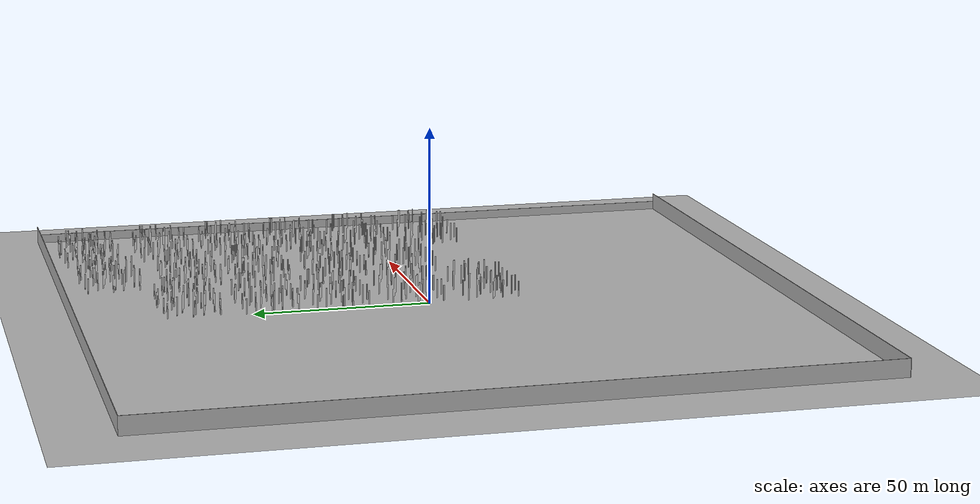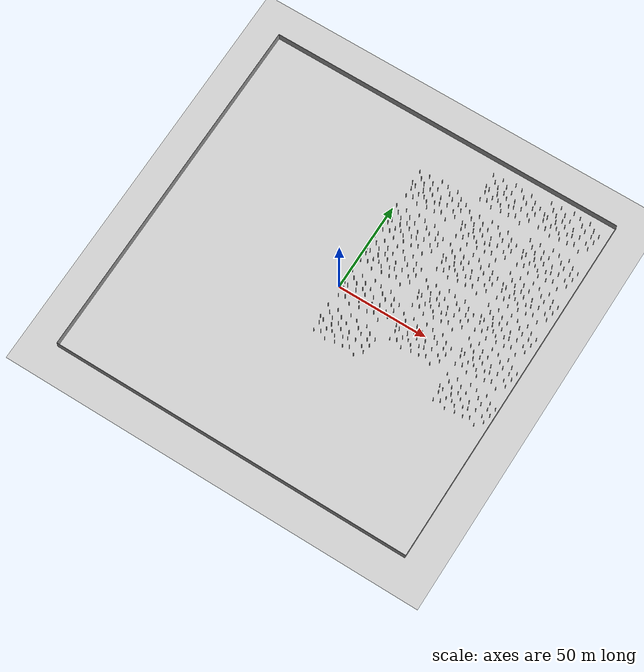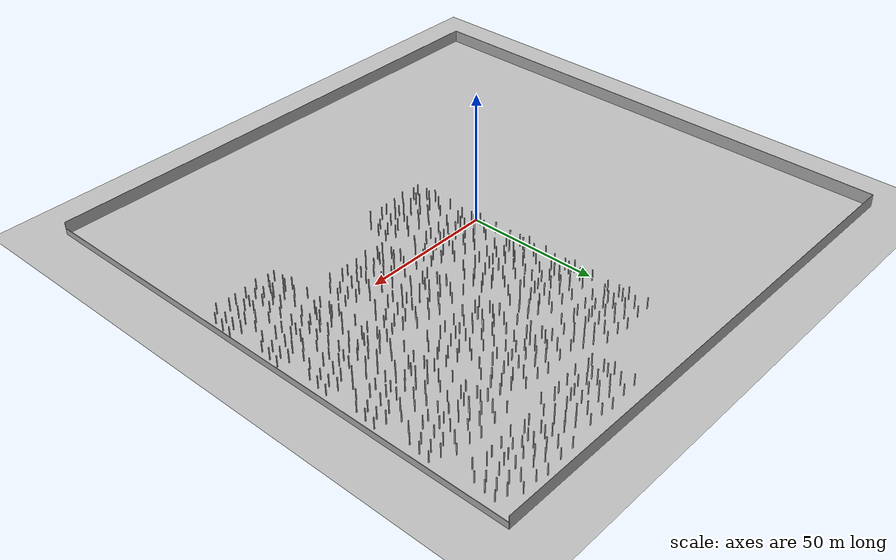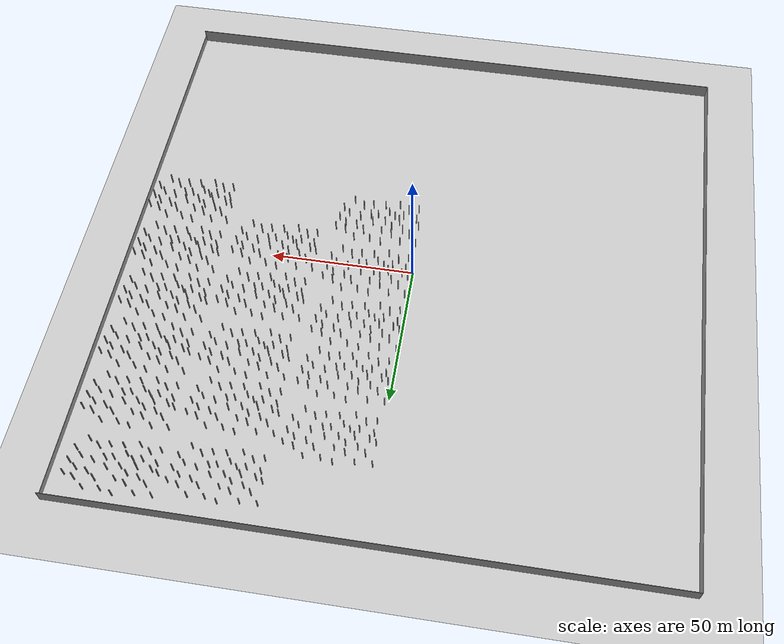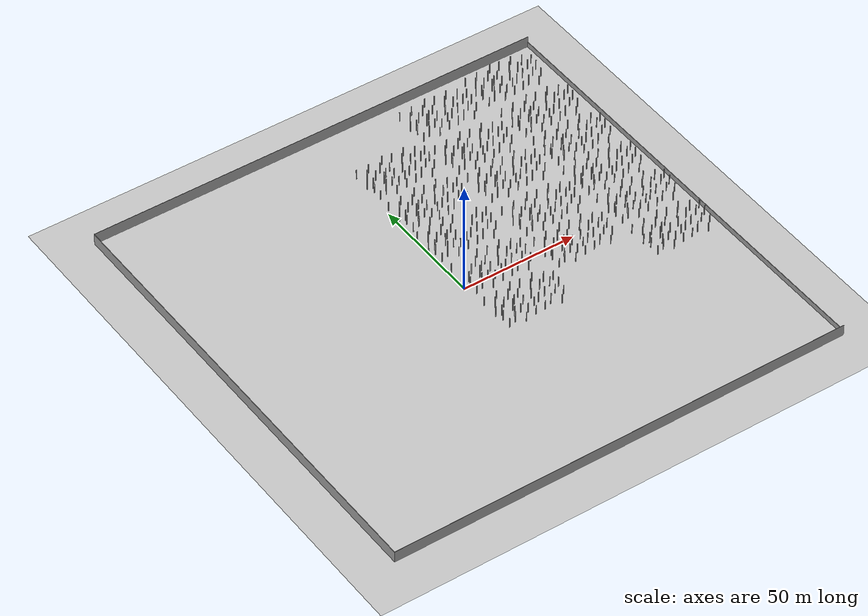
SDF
<sdf version="1.6">
 <world name="default">
  <model name="ground_plane">
   <static>1</static>
   <link name="link">
    <collision name="collision">
     <geometry><plane><normal>0 0 1</normal><size>100 100</size></plane></geometry>
     <surface><friction><ode><mu>100</mu><mu2>50</mu2></ode></friction></surface>
    </collision>
    <visual name="visual">
     <cast_shadows>0</cast_shadows>
     <geometry><plane><normal>0 0 1</normal><size>100 100</size></plane></geometry>
     <material>
      <script><uri>file://media/materials/scripts/gazebo.material</uri><name>Gazebo/Grey</name></script>
     </material>
    </visual>
   </link>
  </model>
  <model name="new_200">
   <link name="Wall_0">
    <pose>0 -100 0 0 -0 0</pose>
    <visual name="Wall_0_Visual">
     <pose>0 0 2.5 0 -0 0</pose>
     <geometry><box><size>200.15 0.15 5</size></box></geometry>
     <material>
      <script><uri>file://media/materials/scripts/gazebo.material</uri><name>Gazebo/Grey</name></script>
      <ambient>1 1 1 1</ambient>
     </material>
     <meta><layer>0</layer></meta>
    </visual>
    <collision name="Wall_0_Collision">
     <pose>0 0 2.5 0 -0 0</pose>
     <geometry><box><size>200.15 0.15 5</size></box></geometry>
     <surface>
      <friction>
       <ode><mu>1</mu><mu2>1</mu2><fdir1>0 0 0</fdir1><slip1>0</slip1><slip2>0</slip2></ode>
       <torsional>
        <coefficient>1</coefficient>
        <patch_radius>0</patch_radius>
        <surface_radius>0</surface_radius>
        <use_patch_radius>1</use_patch_radius>
        <ode><slip>0</slip></ode>
       </torsional>
      </friction>
      <bounce><restitution_coefficient>0</restitution_coefficient><threshold>1e+06</threshold></bounce>
      <contact>
       <collide_without_contact>0</collide_without_contact>
       <collide_without_contact_bitmask>1</collide_without_contact_bitmask>
       <collide_bitmask>1</collide_bitmask>
       <ode>
        <soft_cfm>0</soft_cfm>
        <soft_erp>0.2</soft_erp>
        <kp>1e+13</kp>
        <kd>1</kd>
        <max_vel>0.01</max_vel>
        <min_depth>0</min_depth>
       </ode>
       <bullet>
        <split_impulse>1</split_impulse>
        <split_impulse_penetration_threshold>-0.01</split_impulse_penetration_threshold>
        <soft_cfm>0</soft_cfm>
        <soft_erp>0.2</soft_erp>
        <kp>1e+13</kp>
        <kd>1</kd>
       </bullet>
      </contact>
     </surface>
    </collision>
   </link>
   <link name="Wall_2">
    <pose>-100 0 0 0 -0 1.5708</pose>
    <visual name="Wall_2_Visual">
     <pose>0 0 2.5 0 -0 0</pose>
     <geometry><box><size>200.15 0.15 5</size></box></geometry>
     <material>
      <script><uri>file://media/materials/scripts/gazebo.material</uri><name>Gazebo/Grey</name></script>
      <ambient>1 1 1 1</ambient>
     </material>
     <meta><layer>0</layer></meta>
    </visual>
    <collision name="Wall_2_Collision">
     <pose>0 0 2.5 0 -0 0</pose>
     <geometry><box><size>200.15 0.15 5</size></box></geometry>
     <surface>
      <friction>
       <ode><mu>1</mu><mu2>1</mu2><fdir1>0 0 0</fdir1><slip1>0</slip1><slip2>0</slip2></ode>
       <torsional>
        <coefficient>1</coefficient>
        <patch_radius>0</patch_radius>
        <surface_radius>0</surface_radius>
        <use_patch_radius>1</use_patch_radius>
        <ode><slip>0</slip></ode>
       </torsional>
      </friction>
      <bounce><restitution_coefficient>0</restitution_coefficient><threshold>1e+06</threshold></bounce>
      <contact>
       <collide_without_contact>0</collide_without_contact>
       <collide_without_contact_bitmask>1</collide_without_contact_bitmask>
       <collide_bitmask>1</collide_bitmask>
       <ode>
        <soft_cfm>0</soft_cfm>
        <soft_erp>0.2</soft_erp>
        <kp>1e+13</kp>
        <kd>1</kd>
        <max_vel>0.01</max_vel>
        <min_depth>0</min_depth>
       </ode>
       <bullet>
        <split_impulse>1</split_impulse>
        <split_impulse_penetration_threshold>-0.01</split_impulse_penetration_threshold>
        <soft_cfm>0</soft_cfm>
        <soft_erp>0.2</soft_erp>
        <kp>1e+13</kp>
        <kd>1</kd>
       </bullet>
      </contact>
     </surface>
    </collision>
   </link>
   <link name="Wall_4">
    <pose>0 100 0 0 -0 0</pose>
    <visual name="Wall_4_Visual">
     <pose>0 0 2.5 0 -0 0</pose>
     <geometry><box><size>200.15 0.15 5</size></box></geometry>
     <material>
      <script><uri>file://media/materials/scripts/gazebo.material</uri><name>Gazebo/Grey</name></script>
      <ambient>1 1 1 1</ambient>
     </material>
     <meta><layer>0</layer></meta>
    </visual>
    <collision name="Wall_4_Collision">
     <pose>0 0 2.5 0 -0 0</pose>
     <geometry><box><size>200.15 0.15 5</size></box></geometry>
     <surface>
      <friction>
       <ode><mu>1</mu><mu2>1</mu2><fdir1>0 0 0</fdir1><slip1>0</slip1><slip2>0</slip2></ode>
       <torsional>
        <coefficient>1</coefficient>
        <patch_radius>0</patch_radius>
        <surface_radius>0</surface_radius>
        <use_patch_radius>1</use_patch_radius>
        <ode><slip>0</slip></ode>
       </torsional>
      </friction>
      <bounce><restitution_coefficient>0</restitution_coefficient><threshold>1e+06</threshold></bounce>
      <contact>
       <collide_without_contact>0</collide_without_contact>
       <collide_without_contact_bitmask>1</collide_without_contact_bitmask>
       <collide_bitmask>1</collide_bitmask>
       <ode>
        <soft_cfm>0</soft_cfm>
        <soft_erp>0.2</soft_erp>
        <kp>1e+13</kp>
        <kd>1</kd>
        <max_vel>0.01</max_vel>
        <min_depth>0</min_depth>
       </ode>
       <bullet>
        <split_impulse>1</split_impulse>
        <split_impulse_penetration_threshold>-0.01</split_impulse_penetration_threshold>
        <soft_cfm>0</soft_cfm>
        <soft_erp>0.2</soft_erp>
        <kp>1e+13</kp>
        <kd>1</kd>
       </bullet>
      </contact>
     </surface>
    </collision>
   </link>
   <link name="Wall_6">
    <pose>100 0 0 0 -0 1.5708</pose>
    <visual name="Wall_6_Visual">
     <pose>0 0 1.25 0 -0 0</pose>
     <geometry><box><size>200.15 0.15 2.5</size></box></geometry>
     <material>
      <script><uri>file://media/materials/scripts/gazebo.material</uri><name>Gazebo/Grey</name></script>
      <ambient>1 1 1 1</ambient>
     </material>
     <meta><layer>0</layer></meta>
    </visual>
    <collision name="Wall_6_Collision">
     <pose>0 0 1.25 0 -0 0</pose>
     <geometry><box><size>200.15 0.15 2.5</size></box></geometry>
     <surface>
      <friction>
       <ode><mu>1</mu><mu2>1</mu2><fdir1>0 0 0</fdir1><slip1>0</slip1><slip2>0</slip2></ode>
       <torsional>
        <coefficient>1</coefficient>
        <patch_radius>0</patch_radius>
        <surface_radius>0</surface_radius>
        <use_patch_radius>1</use_patch_radius>
        <ode><slip>0</slip></ode>
       </torsional>
      </friction>
      <bounce><restitution_coefficient>0</restitution_coefficient><threshold>1e+06</threshold></bounce>
      <contact>
       <collide_without_contact>0</collide_without_contact>
       <collide_without_contact_bitmask>1</collide_without_contact_bitmask>
       <collide_bitmask>1</collide_bitmask>
       <ode>
        <soft_cfm>0</soft_cfm>
        <soft_erp>0.2</soft_erp>
        <kp>1e+13</kp>
        <kd>1</kd>
        <max_vel>0.01</max_vel>
        <min_depth>0</min_depth>
       </ode>
       <bullet>
        <split_impulse>1</split_impulse>
        <split_impulse_penetration_threshold>-0.01</split_impulse_penetration_threshold>
        <soft_cfm>0</soft_cfm>
        <soft_erp>0.2</soft_erp>
        <kp>1e+13</kp>
        <kd>1</kd>
       </bullet>
      </contact>
     </surface>
    </collision>
   </link>
   <static>1</static>
   <pose>0.131028 -0.240999 0 0 -0 0</pose>
  </model>
  <model name="pillars">
   <link name="body">
    <velocity_decay><linear>0</linear><angular>0</angular></velocity_decay>
    <visual name="visual">
     <pose>0 0 -0.001 0 -0 0</pose>
     <geometry><mesh><uri>model://pillars/pillars4.dae</uri><scale>1 1 1</scale></mesh></geometry>
    </visual>
    <collision name="pillars">
     <pose>0 0 -0.001 0 -0 0</pose>
     <geometry>
      <mesh>
       <uri>/home/huiyulin/Coding/TARE/multi_planning/Simulator/mrsl2_ws/src/mrsl_quadrotor/mrsl_models/models/pillars/pillars4.dae</uri>
       <scale>1 1 1</scale>
      </mesh>
     </geometry>
     <surface>
      <friction>
       <ode><mu>1</mu><mu2>1</mu2><fdir1>0 0 0</fdir1><slip1>0</slip1><slip2>0</slip2></ode>
       <torsional>
        <coefficient>1</coefficient>
        <patch_radius>0</patch_radius>
        <surface_radius>0</surface_radius>
        <use_patch_radius>1</use_patch_radius>
        <ode><slip>0</slip></ode>
       </torsional>
      </friction>
      <bounce><restitution_coefficient>0</restitution_coefficient><threshold>1e+06</threshold></bounce>
      <contact>
       <collide_without_contact>0</collide_without_contact>
       <collide_without_contact_bitmask>1</collide_without_contact_bitmask>
       <collide_bitmask>1</collide_bitmask>
       <ode>
        <soft_cfm>0</soft_cfm>
        <soft_erp>0.2</soft_erp>
        <kp>1e+13</kp>
        <kd>1</kd>
        <max_vel>0.01</max_vel>
        <min_depth>0</min_depth>
       </ode>
       <bullet>
        <split_impulse>1</split_impulse>
        <split_impulse_penetration_threshold>-0.01</split_impulse_penetration_threshold>
        <soft_cfm>0</soft_cfm>
        <soft_erp>0.2</soft_erp>
        <kp>1e+13</kp>
        <kd>1</kd>
       </bullet>
      </contact>
     </surface>
    </collision>
   </link>
   <static>1</static>
   <pose>63.8836 85.888 0 0 -0 0</pose>
  </model>
  <model name="pillars_clone">
   <link name="body">
    <velocity_decay><linear>0</linear><angular>0</angular></velocity_decay>
    <visual name="visual">
     <pose>0 0 -0.001 0 -0 0</pose>
     <geometry><mesh><uri>model://pillars/pillars4.dae</uri><scale>1 1 1</scale></mesh></geometry>
    </visual>
    <collision name="pillars">
     <pose>0 0 -0.001 0 -0 0</pose>
     <geometry>
      <mesh>
       <uri>/home/huiyulin/Coding/TARE/multi_planning/Simulator/mrsl2_ws/src/mrsl_quadrotor/mrsl_models/models/pillars/pillars4.dae</uri>
       <scale>1 1 1</scale>
      </mesh>
     </geometry>
     <surface>
      <friction>
       <ode><mu>1</mu><mu2>1</mu2><fdir1>0 0 0</fdir1><slip1>0</slip1><slip2>0</slip2></ode>
       <torsional>
        <coefficient>1</coefficient>
        <patch_radius>0</patch_radius>
        <surface_radius>0</surface_radius>
        <use_patch_radius>1</use_patch_radius>
        <ode><slip>0</slip></ode>
       </torsional>
      </friction>
      <bounce><restitution_coefficient>0</restitution_coefficient><threshold>1e+06</threshold></bounce>
      <contact>
       <collide_without_contact>0</collide_without_contact>
       <collide_without_contact_bitmask>1</collide_without_contact_bitmask>
       <collide_bitmask>1</collide_bitmask>
       <ode>
        <soft_cfm>0</soft_cfm>
        <soft_erp>0.2</soft_erp>
        <kp>1e+13</kp>
        <kd>1</kd>
        <max_vel>0.01</max_vel>
        <min_depth>0</min_depth>
       </ode>
       <bullet>
        <split_impulse>1</split_impulse>
        <split_impulse_penetration_threshold>-0.01</split_impulse_penetration_threshold>
        <soft_cfm>0</soft_cfm>
        <soft_erp>0.2</soft_erp>
        <kp>1e+13</kp>
        <kd>1</kd>
       </bullet>
      </contact>
     </surface>
    </collision>
   </link>
   <static>1</static>
   <pose>65.0825 63.0175 0 0 -0 0</pose>
  </model>
  <model name="pillars_clone_0">
   <link name="body">
    <velocity_decay><linear>0</linear><angular>0</angular></velocity_decay>
    <visual name="visual">
     <pose>0 0 -0.001 0 -0 0</pose>
     <geometry><mesh><uri>model://pillars/pillars4.dae</uri><scale>1 1 1</scale></mesh></geometry>
    </visual>
    <collision name="pillars">
     <pose>0 0 -0.001 0 -0 0</pose>
     <geometry>
      <mesh>
       <uri>/home/huiyulin/Coding/TARE/multi_planning/Simulator/mrsl2_ws/src/mrsl_quadrotor/mrsl_models/models/pillars/pillars4.dae</uri>
       <scale>1 1 1</scale>
      </mesh>
     </geometry>
     <surface>
      <friction>
       <ode><mu>1</mu><mu2>1</mu2><fdir1>0 0 0</fdir1><slip1>0</slip1><slip2>0</slip2></ode>
       <torsional>
        <coefficient>1</coefficient>
        <patch_radius>0</patch_radius>
        <surface_radius>0</surface_radius>
        <use_patch_radius>1</use_patch_radius>
        <ode><slip>0</slip></ode>
       </torsional>
      </friction>
      <bounce><restitution_coefficient>0</restitution_coefficient><threshold>1e+06</threshold></bounce>
      <contact>
       <collide_without_contact>0</collide_without_contact>
       <collide_without_contact_bitmask>1</collide_without_contact_bitmask>
       <collide_bitmask>1</collide_bitmask>
       <ode>
        <soft_cfm>0</soft_cfm>
        <soft_erp>0.2</soft_erp>
        <kp>1e+13</kp>
        <kd>1</kd>
        <max_vel>0.01</max_vel>
        <min_depth>0</min_depth>
       </ode>
       <bullet>
        <split_impulse>1</split_impulse>
        <split_impulse_penetration_threshold>-0.01</split_impulse_penetration_threshold>
        <soft_cfm>0</soft_cfm>
        <soft_erp>0.2</soft_erp>
        <kp>1e+13</kp>
        <kd>1</kd>
       </bullet>
      </contact>
     </surface>
    </collision>
   </link>
   <static>1</static>
   <pose>65.7574 42.5502 0 0 -0 0</pose>
  </model>
  <model name="pillars_clone_1">
   <link name="body">
    <velocity_decay><linear>0</linear><angular>0</angular></velocity_decay>
    <visual name="visual">
     <pose>0 0 -0.001 0 -0 0</pose>
     <geometry><mesh><uri>model://pillars/pillars4.dae</uri><scale>1 1 1</scale></mesh></geometry>
    </visual>
    <collision name="pillars">
     <pose>0 0 -0.001 0 -0 0</pose>
     <geometry>
      <mesh>
       <uri>/home/huiyulin/Coding/TARE/multi_planning/Simulator/mrsl2_ws/src/mrsl_quadrotor/mrsl_models/models/pillars/pillars4.dae</uri>
       <scale>1 1 1</scale>
      </mesh>
     </geometry>
     <surface>
      <friction>
       <ode><mu>1</mu><mu2>1</mu2><fdir1>0 0 0</fdir1><slip1>0</slip1><slip2>0</slip2></ode>
       <torsional>
        <coefficient>1</coefficient>
        <patch_radius>0</patch_radius>
        <surface_radius>0</surface_radius>
        <use_patch_radius>1</use_patch_radius>
        <ode><slip>0</slip></ode>
       </torsional>
      </friction>
      <bounce><restitution_coefficient>0</restitution_coefficient><threshold>1e+06</threshold></bounce>
      <contact>
       <collide_without_contact>0</collide_without_contact>
       <collide_without_contact_bitmask>1</collide_without_contact_bitmask>
       <collide_bitmask>1</collide_bitmask>
       <ode>
        <soft_cfm>0</soft_cfm>
        <soft_erp>0.2</soft_erp>
        <kp>1e+13</kp>
        <kd>1</kd>
        <max_vel>0.01</max_vel>
        <min_depth>0</min_depth>
       </ode>
       <bullet>
        <split_impulse>1</split_impulse>
        <split_impulse_penetration_threshold>-0.01</split_impulse_penetration_threshold>
        <soft_cfm>0</soft_cfm>
        <soft_erp>0.2</soft_erp>
        <kp>1e+13</kp>
        <kd>1</kd>
       </bullet>
      </contact>
     </surface>
    </collision>
   </link>
   <static>1</static>
   <pose>65.3502 22.278 0 0 -0 0</pose>
  </model>
  <model name="pillars_clone_2">
   <link name="body">
    <velocity_decay><linear>0</linear><angular>0</angular></velocity_decay>
    <visual name="visual">
     <pose>0 0 -0.001 0 -0 0</pose>
     <geometry><mesh><uri>model://pillars/pillars4.dae</uri><scale>1 1 1</scale></mesh></geometry>
    </visual>
    <collision name="pillars">
     <pose>0 0 -0.001 0 -0 0</pose>
     <geometry>
      <mesh>
       <uri>/home/huiyulin/Coding/TARE/multi_planning/Simulator/mrsl2_ws/src/mrsl_quadrotor/mrsl_models/models/pillars/pillars4.dae</uri>
       <scale>1 1 1</scale>
      </mesh>
     </geometry>
     <surface>
      <friction>
       <ode><mu>1</mu><mu2>1</mu2><fdir1>0 0 0</fdir1><slip1>0</slip1><slip2>0</slip2></ode>
       <torsional>
        <coefficient>1</coefficient>
        <patch_radius>0</patch_radius>
        <surface_radius>0</surface_radius>
        <use_patch_radius>1</use_patch_radius>
        <ode><slip>0</slip></ode>
       </torsional>
      </friction>
      <bounce><restitution_coefficient>0</restitution_coefficient><threshold>1e+06</threshold></bounce>
      <contact>
       <collide_without_contact>0</collide_without_contact>
       <collide_without_contact_bitmask>1</collide_without_contact_bitmask>
       <collide_bitmask>1</collide_bitmask>
       <ode>
        <soft_cfm>0</soft_cfm>
        <soft_erp>0.2</soft_erp>
        <kp>1e+13</kp>
        <kd>1</kd>
        <max_vel>0.01</max_vel>
        <min_depth>0</min_depth>
       </ode>
       <bullet>
        <split_impulse>1</split_impulse>
        <split_impulse_penetration_threshold>-0.01</split_impulse_penetration_threshold>
        <soft_cfm>0</soft_cfm>
        <soft_erp>0.2</soft_erp>
        <kp>1e+13</kp>
        <kd>1</kd>
       </bullet>
      </contact>
     </surface>
    </collision>
   </link>
   <static>1</static>
   <pose>66.4072 2.03271 0 0 -0 0</pose>
  </model>
  <model name="pillars_clone_3">
   <link name="body">
    <velocity_decay><linear>0</linear><angular>0</angular></velocity_decay>
    <visual name="visual">
     <pose>0 0 -0.001 0 -0 0</pose>
     <geometry><mesh><uri>model://pillars/pillars4.dae</uri><scale>1 1 1</scale></mesh></geometry>
    </visual>
    <collision name="pillars">
     <pose>0 0 -0.001 0 -0 0</pose>
     <geometry>
      <mesh>
       <uri>/home/huiyulin/Coding/TARE/multi_planning/Simulator/mrsl2_ws/src/mrsl_quadrotor/mrsl_models/models/pillars/pillars4.dae</uri>
       <scale>1 1 1</scale>
      </mesh>
     </geometry>
     <surface>
      <friction>
       <ode><mu>1</mu><mu2>1</mu2><fdir1>0 0 0</fdir1><slip1>0</slip1><slip2>0</slip2></ode>
       <torsional>
        <coefficient>1</coefficient>
        <patch_radius>0</patch_radius>
        <surface_radius>0</surface_radius>
        <use_patch_radius>1</use_patch_radius>
        <ode><slip>0</slip></ode>
       </torsional>
      </friction>
      <bounce><restitution_coefficient>0</restitution_coefficient><threshold>1e+06</threshold></bounce>
      <contact>
       <collide_without_contact>0</collide_without_contact>
       <collide_without_contact_bitmask>1</collide_without_contact_bitmask>
       <collide_bitmask>1</collide_bitmask>
       <ode>
        <soft_cfm>0</soft_cfm>
        <soft_erp>0.2</soft_erp>
        <kp>1e+13</kp>
        <kd>1</kd>
        <max_vel>0.01</max_vel>
        <min_depth>0</min_depth>
       </ode>
       <bullet>
        <split_impulse>1</split_impulse>
        <split_impulse_penetration_threshold>-0.01</split_impulse_penetration_threshold>
        <soft_cfm>0</soft_cfm>
        <soft_erp>0.2</soft_erp>
        <kp>1e+13</kp>
        <kd>1</kd>
       </bullet>
      </contact>
     </surface>
    </collision>
   </link>
   <static>1</static>
   <pose>66.9687 -19.4024 0 0 -0 0</pose>
  </model>
  <model name="pillars_clone_11">
   <link name="body">
    <velocity_decay><linear>0</linear><angular>0</angular></velocity_decay>
    <visual name="visual">
     <pose>0 0 -0.001 0 -0 0</pose>
     <geometry><mesh><uri>model://pillars/pillars4.dae</uri><scale>1 1 1</scale></mesh></geometry>
    </visual>
    <collision name="pillars">
     <pose>0 0 -0.001 0 -0 0</pose>
     <geometry>
      <mesh>
       <uri>/home/huiyulin/Coding/TARE/multi_planning/Simulator/mrsl2_ws/src/mrsl_quadrotor/mrsl_models/models/pillars/pillars4.dae</uri>
       <scale>1 1 1</scale>
      </mesh>
     </geometry>
     <surface>
      <friction>
       <ode><mu>1</mu><mu2>1</mu2><fdir1>0 0 0</fdir1><slip1>0</slip1><slip2>0</slip2></ode>
       <torsional>
        <coefficient>1</coefficient>
        <patch_radius>0</patch_radius>
        <surface_radius>0</surface_radius>
        <use_patch_radius>1</use_patch_radius>
        <ode><slip>0</slip></ode>
       </torsional>
      </friction>
      <bounce><restitution_coefficient>0</restitution_coefficient><threshold>1e+06</threshold></bounce>
      <contact>
       <collide_without_contact>0</collide_without_contact>
       <collide_without_contact_bitmask>1</collide_without_contact_bitmask>
       <collide_bitmask>1</collide_bitmask>
       <ode>
        <soft_cfm>0</soft_cfm>
        <soft_erp>0.2</soft_erp>
        <kp>1e+13</kp>
        <kd>1</kd>
        <max_vel>0.01</max_vel>
        <min_depth>0</min_depth>
       </ode>
       <bullet>
        <split_impulse>1</split_impulse>
        <split_impulse_penetration_threshold>-0.01</split_impulse_penetration_threshold>
        <soft_cfm>0</soft_cfm>
        <soft_erp>0.2</soft_erp>
        <kp>1e+13</kp>
        <kd>1</kd>
       </bullet>
      </contact>
     </surface>
    </collision>
   </link>
   <static>1</static>
   <pose>32.5652 -3.96804 0 0 -0 0</pose>
  </model>
  <model name="pillars_clone_12">
   <link name="body">
    <velocity_decay><linear>0</linear><angular>0</angular></velocity_decay>
    <visual name="visual">
     <pose>0 0 -0.001 0 -0 0</pose>
     <geometry><mesh><uri>model://pillars/pillars4.dae</uri><scale>1 1 1</scale></mesh></geometry>
    </visual>
    <collision name="pillars">
     <pose>0 0 -0.001 0 -0 0</pose>
     <geometry>
      <mesh>
       <uri>/home/huiyulin/Coding/TARE/multi_planning/Simulator/mrsl2_ws/src/mrsl_quadrotor/mrsl_models/models/pillars/pillars4.dae</uri>
       <scale>1 1 1</scale>
      </mesh>
     </geometry>
     <surface>
      <friction>
       <ode><mu>1</mu><mu2>1</mu2><fdir1>0 0 0</fdir1><slip1>0</slip1><slip2>0</slip2></ode>
       <torsional>
        <coefficient>1</coefficient>
        <patch_radius>0</patch_radius>
        <surface_radius>0</surface_radius>
        <use_patch_radius>1</use_patch_radius>
        <ode><slip>0</slip></ode>
       </torsional>
      </friction>
      <bounce><restitution_coefficient>0</restitution_coefficient><threshold>1e+06</threshold></bounce>
      <contact>
       <collide_without_contact>0</collide_without_contact>
       <collide_without_contact_bitmask>1</collide_without_contact_bitmask>
       <collide_bitmask>1</collide_bitmask>
       <ode>
        <soft_cfm>0</soft_cfm>
        <soft_erp>0.2</soft_erp>
        <kp>1e+13</kp>
        <kd>1</kd>
        <max_vel>0.01</max_vel>
        <min_depth>0</min_depth>
       </ode>
       <bullet>
        <split_impulse>1</split_impulse>
        <split_impulse_penetration_threshold>-0.01</split_impulse_penetration_threshold>
        <soft_cfm>0</soft_cfm>
        <soft_erp>0.2</soft_erp>
        <kp>1e+13</kp>
        <kd>1</kd>
       </bullet>
      </contact>
     </surface>
    </collision>
   </link>
   <static>1</static>
   <pose>32.6409 16.956 0 0 -0 0</pose>
  </model>
  <model name="pillars_clone_13">
   <link name="body">
    <velocity_decay><linear>0</linear><angular>0</angular></velocity_decay>
    <visual name="visual">
     <pose>0 0 -0.001 0 -0 0</pose>
     <geometry><mesh><uri>model://pillars/pillars4.dae</uri><scale>1 1 1</scale></mesh></geometry>
    </visual>
    <collision name="pillars">
     <pose>0 0 -0.001 0 -0 0</pose>
     <geometry>
      <mesh>
       <uri>/home/huiyulin/Coding/TARE/multi_planning/Simulator/mrsl2_ws/src/mrsl_quadrotor/mrsl_models/models/pillars/pillars4.dae</uri>
       <scale>1 1 1</scale>
      </mesh>
     </geometry>
     <surface>
      <friction>
       <ode><mu>1</mu><mu2>1</mu2><fdir1>0 0 0</fdir1><slip1>0</slip1><slip2>0</slip2></ode>
       <torsional>
        <coefficient>1</coefficient>
        <patch_radius>0</patch_radius>
        <surface_radius>0</surface_radius>
        <use_patch_radius>1</use_patch_radius>
        <ode><slip>0</slip></ode>
       </torsional>
      </friction>
      <bounce><restitution_coefficient>0</restitution_coefficient><threshold>1e+06</threshold></bounce>
      <contact>
       <collide_without_contact>0</collide_without_contact>
       <collide_without_contact_bitmask>1</collide_without_contact_bitmask>
       <collide_bitmask>1</collide_bitmask>
       <ode>
        <soft_cfm>0</soft_cfm>
        <soft_erp>0.2</soft_erp>
        <kp>1e+13</kp>
        <kd>1</kd>
        <max_vel>0.01</max_vel>
        <min_depth>0</min_depth>
       </ode>
       <bullet>
        <split_impulse>1</split_impulse>
        <split_impulse_penetration_threshold>-0.01</split_impulse_penetration_threshold>
        <soft_cfm>0</soft_cfm>
        <soft_erp>0.2</soft_erp>
        <kp>1e+13</kp>
        <kd>1</kd>
       </bullet>
      </contact>
     </surface>
    </collision>
   </link>
   <static>1</static>
   <pose>32.7349 39.7709 0 0 -0 0</pose>
  </model>
  <model name="pillars_clone_14">
   <link name="body">
    <velocity_decay><linear>0</linear><angular>0</angular></velocity_decay>
    <visual name="visual">
     <pose>0 0 -0.001 0 -0 0</pose>
     <geometry><mesh><uri>model://pillars/pillars4.dae</uri><scale>1 1 1</scale></mesh></geometry>
    </visual>
    <collision name="pillars">
     <pose>0 0 -0.001 0 -0 0</pose>
     <geometry>
      <mesh>
       <uri>/home/huiyulin/Coding/TARE/multi_planning/Simulator/mrsl2_ws/src/mrsl_quadrotor/mrsl_models/models/pillars/pillars4.dae</uri>
       <scale>1 1 1</scale>
      </mesh>
     </geometry>
     <surface>
      <friction>
       <ode><mu>1</mu><mu2>1</mu2><fdir1>0 0 0</fdir1><slip1>0</slip1><slip2>0</slip2></ode>
       <torsional>
        <coefficient>1</coefficient>
        <patch_radius>0</patch_radius>
        <surface_radius>0</surface_radius>
        <use_patch_radius>1</use_patch_radius>
        <ode><slip>0</slip></ode>
       </torsional>
      </friction>
      <bounce><restitution_coefficient>0</restitution_coefficient><threshold>1e+06</threshold></bounce>
      <contact>
       <collide_without_contact>0</collide_without_contact>
       <collide_without_contact_bitmask>1</collide_without_contact_bitmask>
       <collide_bitmask>1</collide_bitmask>
       <ode>
        <soft_cfm>0</soft_cfm>
        <soft_erp>0.2</soft_erp>
        <kp>1e+13</kp>
        <kd>1</kd>
        <max_vel>0.01</max_vel>
        <min_depth>0</min_depth>
       </ode>
       <bullet>
        <split_impulse>1</split_impulse>
        <split_impulse_penetration_threshold>-0.01</split_impulse_penetration_threshold>
        <soft_cfm>0</soft_cfm>
        <soft_erp>0.2</soft_erp>
        <kp>1e+13</kp>
        <kd>1</kd>
       </bullet>
      </contact>
     </surface>
    </collision>
   </link>
   <static>1</static>
   <pose>31.5787 60.0049 0 0 -0 0</pose>
  </model>
  <model name="pillars_clone_15">
   <link name="body">
    <velocity_decay><linear>0</linear><angular>0</angular></velocity_decay>
    <visual name="visual">
     <pose>0 0 -0.001 0 -0 0</pose>
     <geometry><mesh><uri>model://pillars/pillars4.dae</uri><scale>1 1 1</scale></mesh></geometry>
    </visual>
    <collision name="pillars">
     <pose>0 0 -0.001 0 -0 0</pose>
     <geometry>
      <mesh>
       <uri>/home/huiyulin/Coding/TARE/multi_planning/Simulator/mrsl2_ws/src/mrsl_quadrotor/mrsl_models/models/pillars/pillars4.dae</uri>
       <scale>1 1 1</scale>
      </mesh>
     </geometry>
     <surface>
      <friction>
       <ode><mu>1</mu><mu2>1</mu2><fdir1>0 0 0</fdir1><slip1>0</slip1><slip2>0</slip2></ode>
       <torsional>
        <coefficient>1</coefficient>
        <patch_radius>0</patch_radius>
        <surface_radius>0</surface_radius>
        <use_patch_radius>1</use_patch_radius>
        <ode><slip>0</slip></ode>
       </torsional>
      </friction>
      <bounce><restitution_coefficient>0</restitution_coefficient><threshold>1e+06</threshold></bounce>
      <contact>
       <collide_without_contact>0</collide_without_contact>
       <collide_without_contact_bitmask>1</collide_without_contact_bitmask>
       <collide_bitmask>1</collide_bitmask>
       <ode>
        <soft_cfm>0</soft_cfm>
        <soft_erp>0.2</soft_erp>
        <kp>1e+13</kp>
        <kd>1</kd>
        <max_vel>0.01</max_vel>
        <min_depth>0</min_depth>
       </ode>
       <bullet>
        <split_impulse>1</split_impulse>
        <split_impulse_penetration_threshold>-0.01</split_impulse_penetration_threshold>
        <soft_cfm>0</soft_cfm>
        <soft_erp>0.2</soft_erp>
        <kp>1e+13</kp>
        <kd>1</kd>
       </bullet>
      </contact>
     </surface>
    </collision>
   </link>
   <static>1</static>
   <pose>31.3749 83.5386 0 0 -0 0</pose>
  </model>
  <model name="pillars_clone_17">
   <link name="body">
    <velocity_decay><linear>0</linear><angular>0</angular></velocity_decay>
    <visual name="visual">
     <pose>0 0 -0.001 0 -0 0</pose>
     <geometry><mesh><uri>model://pillars/pillars4.dae</uri><scale>1 1 1</scale></mesh></geometry>
    </visual>
    <collision name="pillars">
     <pose>0 0 -0.001 0 -0 0</pose>
     <geometry>
      <mesh>
       <uri>/home/huiyulin/Coding/TARE/multi_planning/Simulator/mrsl2_ws/src/mrsl_quadrotor/mrsl_models/models/pillars/pillars4.dae</uri>
       <scale>1 1 1</scale>
      </mesh>
     </geometry>
     <surface>
      <friction>
       <ode><mu>1</mu><mu2>1</mu2><fdir1>0 0 0</fdir1><slip1>0</slip1><slip2>0</slip2></ode>
       <torsional>
        <coefficient>1</coefficient>
        <patch_radius>0</patch_radius>
        <surface_radius>0</surface_radius>
        <use_patch_radius>1</use_patch_radius>
        <ode><slip>0</slip></ode>
       </torsional>
      </friction>
      <bounce><restitution_coefficient>0</restitution_coefficient><threshold>1e+06</threshold></bounce>
      <contact>
       <collide_without_contact>0</collide_without_contact>
       <collide_without_contact_bitmask>1</collide_without_contact_bitmask>
       <collide_bitmask>1</collide_bitmask>
       <ode>
        <soft_cfm>0</soft_cfm>
        <soft_erp>0.2</soft_erp>
        <kp>1e+13</kp>
        <kd>1</kd>
        <max_vel>0.01</max_vel>
        <min_depth>0</min_depth>
       </ode>
       <bullet>
        <split_impulse>1</split_impulse>
        <split_impulse_penetration_threshold>-0.01</split_impulse_penetration_threshold>
        <soft_cfm>0</soft_cfm>
        <soft_erp>0.2</soft_erp>
        <kp>1e+13</kp>
        <kd>1</kd>
       </bullet>
      </contact>
     </surface>
    </collision>
   </link>
   <static>1</static>
   <pose>-0.998331 65.4734 0 0 -0 0</pose>
  </model>
  <model name="pillars_clone_18">
   <link name="body">
    <velocity_decay><linear>0</linear><angular>0</angular></velocity_decay>
    <visual name="visual">
     <pose>0 0 -0.001 0 -0 0</pose>
     <geometry><mesh><uri>model://pillars/pillars4.dae</uri><scale>1 1 1</scale></mesh></geometry>
    </visual>
    <collision name="pillars">
     <pose>0 0 -0.001 0 -0 0</pose>
     <geometry>
      <mesh>
       <uri>/home/huiyulin/Coding/TARE/multi_planning/Simulator/mrsl2_ws/src/mrsl_quadrotor/mrsl_models/models/pillars/pillars4.dae</uri>
       <scale>1 1 1</scale>
      </mesh>
     </geometry>
     <surface>
      <friction>
       <ode><mu>1</mu><mu2>1</mu2><fdir1>0 0 0</fdir1><slip1>0</slip1><slip2>0</slip2></ode>
       <torsional>
        <coefficient>1</coefficient>
        <patch_radius>0</patch_radius>
        <surface_radius>0</surface_radius>
        <use_patch_radius>1</use_patch_radius>
        <ode><slip>0</slip></ode>
       </torsional>
      </friction>
      <bounce><restitution_coefficient>0</restitution_coefficient><threshold>1e+06</threshold></bounce>
      <contact>
       <collide_without_contact>0</collide_without_contact>
       <collide_without_contact_bitmask>1</collide_without_contact_bitmask>
       <collide_bitmask>1</collide_bitmask>
       <ode>
        <soft_cfm>0</soft_cfm>
        <soft_erp>0.2</soft_erp>
        <kp>1e+13</kp>
        <kd>1</kd>
        <max_vel>0.01</max_vel>
        <min_depth>0</min_depth>
       </ode>
       <bullet>
        <split_impulse>1</split_impulse>
        <split_impulse_penetration_threshold>-0.01</split_impulse_penetration_threshold>
        <soft_cfm>0</soft_cfm>
        <soft_erp>0.2</soft_erp>
        <kp>1e+13</kp>
        <kd>1</kd>
       </bullet>
      </contact>
     </surface>
    </collision>
   </link>
   <static>1</static>
   <pose>-1.1005 43.5221 0 0 -0 0</pose>
  </model>
  <model name="pillars_clone_19">
   <link name="body">
    <velocity_decay><linear>0</linear><angular>0</angular></velocity_decay>
    <visual name="visual">
     <pose>0 0 -0.001 0 -0 0</pose>
     <geometry><mesh><uri>model://pillars/pillars4.dae</uri><scale>1 1 1</scale></mesh></geometry>
    </visual>
    <collision name="pillars">
     <pose>0 0 -0.001 0 -0 0</pose>
     <geometry>
      <mesh>
       <uri>/home/huiyulin/Coding/TARE/multi_planning/Simulator/mrsl2_ws/src/mrsl_quadrotor/mrsl_models/models/pillars/pillars4.dae</uri>
       <scale>1 1 1</scale>
      </mesh>
     </geometry>
     <surface>
      <friction>
       <ode><mu>1</mu><mu2>1</mu2><fdir1>0 0 0</fdir1><slip1>0</slip1><slip2>0</slip2></ode>
       <torsional>
        <coefficient>1</coefficient>
        <patch_radius>0</patch_radius>
        <surface_radius>0</surface_radius>
        <use_patch_radius>1</use_patch_radius>
        <ode><slip>0</slip></ode>
       </torsional>
      </friction>
      <bounce><restitution_coefficient>0</restitution_coefficient><threshold>1e+06</threshold></bounce>
      <contact>
       <collide_without_contact>0</collide_without_contact>
       <collide_without_contact_bitmask>1</collide_without_contact_bitmask>
       <collide_bitmask>1</collide_bitmask>
       <ode>
        <soft_cfm>0</soft_cfm>
        <soft_erp>0.2</soft_erp>
        <kp>1e+13</kp>
        <kd>1</kd>
        <max_vel>0.01</max_vel>
        <min_depth>0</min_depth>
       </ode>
       <bullet>
        <split_impulse>1</split_impulse>
        <split_impulse_penetration_threshold>-0.01</split_impulse_penetration_threshold>
        <soft_cfm>0</soft_cfm>
        <soft_erp>0.2</soft_erp>
        <kp>1e+13</kp>
        <kd>1</kd>
       </bullet>
      </contact>
     </surface>
    </collision>
   </link>
   <static>1</static>
   <pose>-1.58695 23.6439 0 0 -0 0</pose>
  </model>
  <model name="pillars_clone_20">
   <link name="body">
    <velocity_decay><linear>0</linear><angular>0</angular></velocity_decay>
    <visual name="visual">
     <pose>0 0 -0.001 0 -0 0</pose>
     <geometry><mesh><uri>model://pillars/pillars4.dae</uri><scale>1 1 1</scale></mesh></geometry>
    </visual>
    <collision name="pillars">
     <pose>0 0 -0.001 0 -0 0</pose>
     <geometry>
      <mesh>
       <uri>/home/huiyulin/Coding/TARE/multi_planning/Simulator/mrsl2_ws/src/mrsl_quadrotor/mrsl_models/models/pillars/pillars4.dae</uri>
       <scale>1 1 1</scale>
      </mesh>
     </geometry>
     <surface>
      <friction>
       <ode><mu>1</mu><mu2>1</mu2><fdir1>0 0 0</fdir1><slip1>0</slip1><slip2>0</slip2></ode>
       <torsional>
        <coefficient>1</coefficient>
        <patch_radius>0</patch_radius>
        <surface_radius>0</surface_radius>
        <use_patch_radius>1</use_patch_radius>
        <ode><slip>0</slip></ode>
       </torsional>
      </friction>
      <bounce><restitution_coefficient>0</restitution_coefficient><threshold>1e+06</threshold></bounce>
      <contact>
       <collide_without_contact>0</collide_without_contact>
       <collide_without_contact_bitmask>1</collide_without_contact_bitmask>
       <collide_bitmask>1</collide_bitmask>
       <ode>
        <soft_cfm>0</soft_cfm>
        <soft_erp>0.2</soft_erp>
        <kp>1e+13</kp>
        <kd>1</kd>
        <max_vel>0.01</max_vel>
        <min_depth>0</min_depth>
       </ode>
       <bullet>
        <split_impulse>1</split_impulse>
        <split_impulse_penetration_threshold>-0.01</split_impulse_penetration_threshold>
        <soft_cfm>0</soft_cfm>
        <soft_erp>0.2</soft_erp>
        <kp>1e+13</kp>
        <kd>1</kd>
       </bullet>
      </contact>
     </surface>
    </collision>
   </link>
   <static>1</static>
   <pose>-1.02859 1.95321 0 0 -0 0</pose>
  </model>
  <model name="pillars_clone_21">
   <link name="body">
    <velocity_decay><linear>0</linear><angular>0</angular></velocity_decay>
    <visual name="visual">
     <pose>0 0 -0.001 0 -0 0</pose>
     <geometry><mesh><uri>model://pillars/pillars4.dae</uri><scale>1 1 1</scale></mesh></geometry>
    </visual>
    <collision name="pillars">
     <pose>0 0 -0.001 0 -0 0</pose>
     <geometry>
      <mesh>
       <uri>/home/huiyulin/Coding/TARE/multi_planning/Simulator/mrsl2_ws/src/mrsl_quadrotor/mrsl_models/models/pillars/pillars4.dae</uri>
       <scale>1 1 1</scale>
      </mesh>
     </geometry>
     <surface>
      <friction>
       <ode><mu>1</mu><mu2>1</mu2><fdir1>0 0 0</fdir1><slip1>0</slip1><slip2>0</slip2></ode>
       <torsional>
        <coefficient>1</coefficient>
        <patch_radius>0</patch_radius>
        <surface_radius>0</surface_radius>
        <use_patch_radius>1</use_patch_radius>
        <ode><slip>0</slip></ode>
       </torsional>
      </friction>
      <bounce><restitution_coefficient>0</restitution_coefficient><threshold>1e+06</threshold></bounce>
      <contact>
       <collide_without_contact>0</collide_without_contact>
       <collide_without_contact_bitmask>1</collide_without_contact_bitmask>
       <collide_bitmask>1</collide_bitmask>
       <ode>
        <soft_cfm>0</soft_cfm>
        <soft_erp>0.2</soft_erp>
        <kp>1e+13</kp>
        <kd>1</kd>
        <max_vel>0.01</max_vel>
        <min_depth>0</min_depth>
       </ode>
       <bullet>
        <split_impulse>1</split_impulse>
        <split_impulse_penetration_threshold>-0.01</split_impulse_penetration_threshold>
        <soft_cfm>0</soft_cfm>
        <soft_erp>0.2</soft_erp>
        <kp>1e+13</kp>
        <kd>1</kd>
       </bullet>
      </contact>
     </surface>
    </collision>
   </link>
   <static>1</static>
   <pose>-1.46147 -19.8125 0 0 -0 0</pose>
  </model>
 </world>
</sdf>
